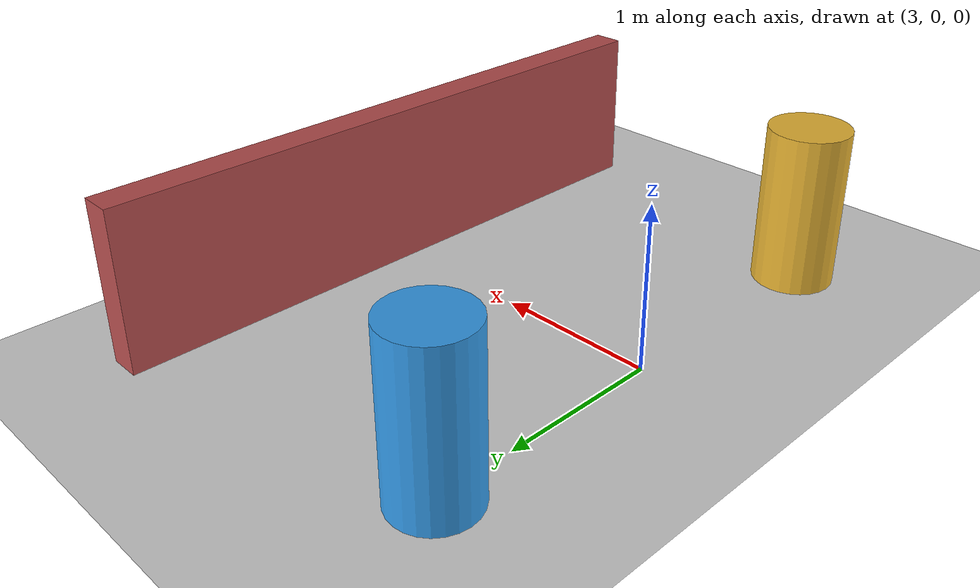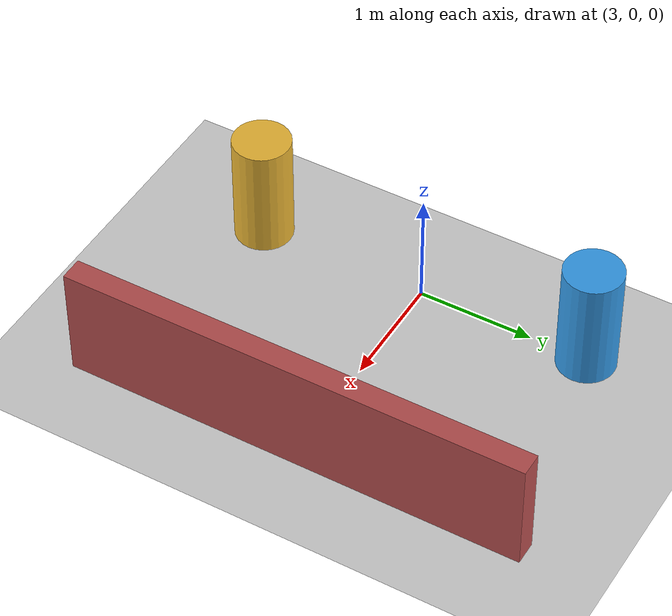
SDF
<?xml version="1.0" ?>
<!--
  Driving world for the reference robot: ground, sun, and a few obstacles. It
  loads both the sensors-system (camera + LiDAR render) and the imu-system.
-->
<sdf version="1.10">
  <world name="reference_world">
    <physics name="1ms" type="ignored">
      <max_step_size>0.001</max_step_size>
      <real_time_factor>1.0</real_time_factor>
    </physics>

    <plugin filename="gz-sim-physics-system" name="gz::sim::systems::Physics"/>
    <plugin filename="gz-sim-user-commands-system" name="gz::sim::systems::UserCommands"/>
    <plugin filename="gz-sim-scene-broadcaster-system" name="gz::sim::systems::SceneBroadcaster"/>
    <plugin filename="gz-sim-sensors-system" name="gz::sim::systems::Sensors">
      <render_engine>ogre2</render_engine>
    </plugin>
    <plugin filename="gz-sim-imu-system" name="gz::sim::systems::Imu"/>

    <light type="directional" name="sun">
      <cast_shadows>true</cast_shadows>
      <pose>0 0 10 0 0 0</pose>
      <diffuse>1 1 1 1</diffuse>
      <specular>0.2 0.2 0.2 1</specular>
      <direction>-0.5 0.1 -0.9</direction>
    </light>

    <model name="ground_plane">
      <static>true</static>
      <link name="link">
        <collision name="collision">
          <geometry><plane><normal>0 0 1</normal><size>100 100</size></plane></geometry>
        </collision>
        <visual name="visual">
          <geometry><plane><normal>0 0 1</normal><size>100 100</size></plane></geometry>
          <material>
            <ambient>0.8 0.8 0.8 1</ambient>
            <diffuse>0.8 0.8 0.8 1</diffuse>
          </material>
        </visual>
      </link>
    </model>

    <model name="pillar_a">
      <static>true</static>
      <pose>3 1.5 0.5 0 0 0</pose>
      <link name="link">
        <collision name="collision"><geometry><cylinder><radius>0.25</radius><length>1</length></cylinder></geometry></collision>
        <visual name="visual">
          <geometry><cylinder><radius>0.25</radius><length>1</length></cylinder></geometry>
          <material><ambient>0.2 0.6 0.9 1</ambient><diffuse>0.2 0.6 0.9 1</diffuse></material>
        </visual>
      </link>
    </model>
    <model name="pillar_b">
      <static>true</static>
      <pose>3 -1.5 0.5 0 0 0</pose>
      <link name="link">
        <collision name="collision"><geometry><cylinder><radius>0.25</radius><length>1</length></cylinder></geometry></collision>
        <visual name="visual">
          <geometry><cylinder><radius>0.25</radius><length>1</length></cylinder></geometry>
          <material><ambient>0.9 0.7 0.2 1</ambient><diffuse>0.9 0.7 0.2 1</diffuse></material>
        </visual>
      </link>
    </model>
    <model name="wall">
      <static>true</static>
      <pose>5 0 0.5 0 0 0</pose>
      <link name="link">
        <collision name="collision"><geometry><box><size>0.2 4 1</size></box></geometry></collision>
        <visual name="visual">
          <geometry><box><size>0.2 4 1</size></box></geometry>
          <material><ambient>0.7 0.3 0.3 1</ambient><diffuse>0.7 0.3 0.3 1</diffuse></material>
        </visual>
      </link>
    </model>
  </world>
</sdf>
